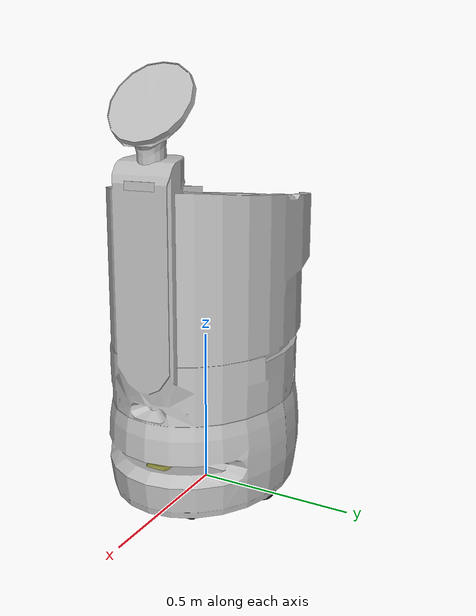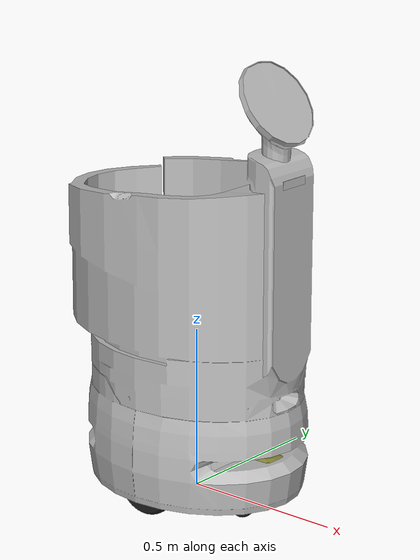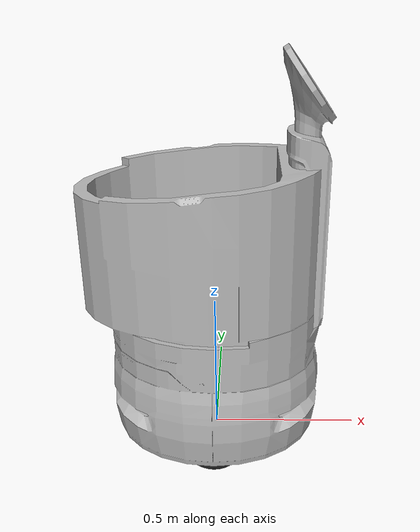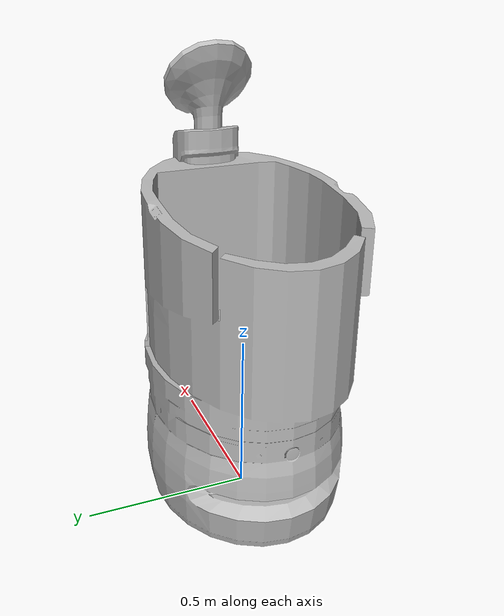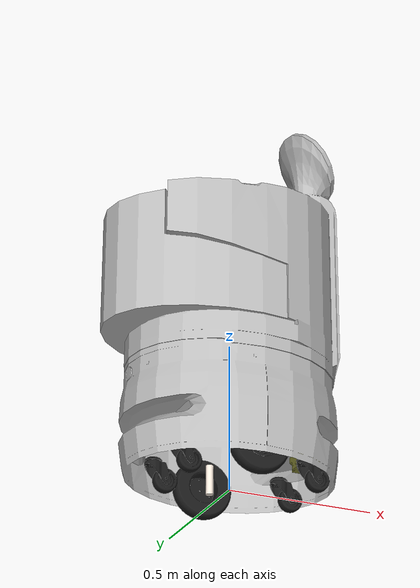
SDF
<?xml version="1.0"?>
<sdf version='1.6'>
<model name='CLOi_porter' canonical_link="link_MainBody">
  <link name='link_MainBody'>
   <inertial>
      <mass>59</mass>
      <inertia>
        <ixx>0.7</ixx>
        <ixy>0</ixy>
        <ixz>0</ixz>
        <iyy>0.7</iyy>
        <iyz>0</iyz>
        <izz>2</izz>
      </inertia>
      <pose>0 0 0.25 0 -0 0</pose>
    </inertial>

    <gravity>1</gravity>
    <self_collide>0</self_collide>
    <kinematic>0</kinematic>
    <enable_wind>0</enable_wind>

    <visual name='visual_main_base'>
      <geometry>
        <mesh>
          <uri>model://CLOi_porter/meshes/CLOi_porter.obj</uri>
          <scale>1 1 1</scale>
        </mesh>
      </geometry>
      <material>
        <emissive>0.005 0.005 0.005 1</emissive>
      </material>
      <transparency>0</transparency>
      <cast_shadows>0</cast_shadows>
    </visual>

    <collision name='collision_main_body'>
      <max_contacts>2</max_contacts>
      <geometry>
        <mesh>
          <uri>model://CLOi_porter/meshes/main_body_collision.stl</uri>
          <scale>1 1 1</scale>
        </mesh>
      </geometry>
      <surface>
        <friction>
          <ode>
            <mu>0.85</mu>
            <mu2>0.80</mu2>
            <fdir1>0 0 0</fdir1>
            <slip1>0.01</slip1>
            <slip2>0.01</slip2>
          </ode>
        </friction>
        <contact>
          <poissons_ratio>0.39</poissons_ratio>
          <elastic_modulus>0.39</elastic_modulus>
          <ode>
            <soft_cfm>0.05</soft_cfm>
            <soft_erp>0.40</soft_erp>
            <kp>1e+12</kp>
            <kd>0.01</kd>
            <min_depth>0.001</min_depth>
          </ode>
        </contact>
      </surface>
    </collision>
    <collision name='collision_cart'>
      <max_contacts>2</max_contacts>
      <geometry>
        <mesh>
          <uri>model://CLOi_porter/meshes/cart_collision.stl</uri>
          <scale>1 1 1</scale>
        </mesh>
      </geometry>
    </collision>
    <collision name='collision_neck'>
      <max_contacts>2</max_contacts>
      <geometry>
        <mesh>
          <uri>model://CLOi_porter/meshes/neck_collision.stl</uri>
          <scale>1 1 1</scale>
        </mesh>
      </geometry>
    </collision>
    <collision name='collision_head'>
      <max_contacts>2</max_contacts>
      <geometry>
        <mesh>
          <uri>model://CLOi_porter/meshes/head_collision.stl</uri>
          <scale>1 1 1</scale>
        </mesh>
      </geometry>
    </collision>

    <battery name="linear_battery">
      <voltage>42</voltage>
    </battery>
  </link>

  <include>
    <uri>model://robot_wheel_suspension</uri>
    <name>SuspensionLeft</name>
    <pose>0 0.158 0.09 0 0 0</pose>
  </include>
  <include>
    <uri>model://CLOi_porter_wheel</uri>
    <name>wheel_left</name>
    <pose>0.001 0.225 0.08 -1.5707962 0 0</pose>
  </include>
  <joint name="Joint_link_MainBody_SuspLeft" type="prismatic">
    <parent>link_MainBody</parent>
    <child>SuspensionLeft::link</child>
    <axis>
      <xyz>0 0 1</xyz>
      <limit>
        <upper>0.04</upper>
        <lower>0.0</lower>
        <effort>300</effort>
      </limit>
      <dynamics>
        <friction>0.1</friction>
        <damping>320</damping>
        <spring_stiffness>8200</spring_stiffness>
      </dynamics>
    </axis>
  </joint>
  <joint name='link_MainBody_wheel_left' type='revolute'>
    <parent>SuspensionLeft::link</parent>
    <child>wheel_left::link</child>
    <axis>
      <xyz>0 0 1</xyz>
      <limit>
        <effort>50</effort>
      </limit>
      <dynamics>
        <friction>0.001</friction>
        <damping>12</damping>
      </dynamics>
    </axis>
  </joint>

  <include>
    <uri>model://robot_wheel_suspension</uri>
    <name>SuspensionRight</name>
    <pose>0 -0.158 0.09 0 0 0</pose>
  </include>
  <include>
    <uri>model://CLOi_porter_wheel</uri>
    <name>wheel_right</name>
    <pose>0.001 -0.225 0.08 1.5707962 0 0</pose>
  </include>
  <joint name="Joint_link_MainBody_SuspRight" type="prismatic">
    <parent>link_MainBody</parent>
    <child>SuspensionRight::link</child>
    <axis>
      <xyz>0 0 1</xyz>
      <limit>
        <upper>0.04</upper>
        <lower>0.0</lower>
        <effort>300</effort>
      </limit>
      <dynamics>
        <friction>0.1</friction>
        <damping>320</damping>
        <spring_stiffness>8200</spring_stiffness>
      </dynamics>
    </axis>
  </joint>
  <joint name='link_MainBody_wheel_right' type='revolute'>
    <parent>SuspensionRight::link</parent>
    <child>wheel_right::link</child>
    <axis>
      <xyz>0 0 -1</xyz>
      <limit>
        <effort>50</effort>
      </limit>
      <dynamics>
        <friction>0.001</friction>
        <damping>12</damping>
      </dynamics>
    </axis>
  </joint>

  <include>
    <uri>model://CLOi_porter_caster</uri>
    <name>FL_caster</name>
    <pose>0.22 0.1 0.066 0 0 0</pose>
  </include>
  <joint name='link_MainBody_Caster_FL' type='revolute'>
    <parent>link_MainBody</parent>
    <child>FL_caster::link</child>
    <axis>
      <xyz>0 0 1</xyz>
      <dynamics>
        <friction>0.3</friction>
      </dynamics>
    </axis>
  </joint>

  <include>
    <uri>model://CLOi_porter_caster</uri>
    <name>FR_caster</name>
    <pose>0.22 -0.1 0.066 0 0 0</pose>
  </include>
  <joint name='link_MainBody_Caster_FR' type='revolute'>
    <parent>link_MainBody</parent>
    <child>FR_caster::link</child>
    <axis>
      <xyz>0 0 1</xyz>
      <dynamics>
        <friction>0.3</friction>
      </dynamics>
    </axis>
  </joint>

  <include>
    <uri>model://CLOi_porter_caster</uri>
    <name>RL_caster</name>
    <pose>-0.220 0.1 0.066 0 0 0</pose>
  </include>
  <joint name='link_MainBody_Caster_RL' type='revolute'>
    <parent>link_MainBody</parent>
    <child>RL_caster::link</child>
    <axis>
      <xyz>0 0 1</xyz>
      <dynamics>
        <friction>0.3</friction>
      </dynamics>
    </axis>
  </joint>

  <include>
    <uri>model://CLOi_porter_caster</uri>
    <name>RR_caster</name>
    <pose>-0.220 -0.1 0.066 0 0 0</pose>
  </include>
  <joint name='link_MainBody_Caster_RR' type='revolute'>
    <parent>link_MainBody</parent>
    <child>RR_caster::link</child>
    <axis>
      <xyz>0 0 1</xyz>
      <dynamics>
        <friction>0.3</friction>
      </dynamics>
    </axis>
  </joint>

  <include>
    <uri>model://robot_camera</uri>
    <name>camera</name>
    <pose>0.344 0 1.0141 0 0 0</pose>
  </include>
  <joint name='link_MainBody_JOINT_camera_front' type='fixed'>
    <parent>link_MainBody</parent>
    <child>camera::link</child>
  </joint>

  <include>
    <uri>model://robot_depthcam</uri>
    <name>depthcamera</name>
    <pose>0.344 0 1.0141 0 0 0</pose>
  </include>
  <joint name='link_MainBody_JOINT_depthcamera_front' type='fixed'>
    <parent>link_MainBody</parent>
    <child>depthcamera::link</child>
  </joint>

  <include>
    <uri>model://robot_IMU</uri>
    <name>imu</name>
    <pose>0 0 0.19 0 0 0</pose>
  </include>
  <joint name='link_MainBody_JOINT_imu' type='fixed'>
    <parent>link_MainBody</parent>
    <child>imu::link_imu</child>
  </joint>

  <include>
    <uri>model://hokuyo_UAM05LPT301_gpu</uri>
    <name>lidar</name>
    <pose>0.270000 0 0.1125 0 0 0</pose>
  </include>
  <joint name='link_MainBody_JOINT_lidar' type='fixed'>
    <parent>link_MainBody</parent>
    <child>lidar::link</child>
  </joint>

  <include>
    <uri>model://robot_GPS</uri>
    <name>gps</name>
    <pose>0 0 0.21 0 0 0</pose>
  </include>
  <joint name='Joint_GPS' type='fixed'>
    <parent>link_MainBody</parent>
    <child>gps::link</child>
  </joint>

  <plugin name='MicomRobotControl' filename='libMicomPlugin.so'>
    <imu>imu</imu>
    <uss>
    </uss>
    <ir>
    </ir>
    <magnet>
    </magnet>
    <bumper>
    </bumper>
    <wheel>
      <PID>
        <kp>1.1</kp>
        <ki>0.01</ki>
        <kd>0</kd>
      </PID>
      <separation>0.475</separation>
      <radius>0.1</radius>
      <location type="left">wheel_left</location>
      <location type="right">wheel_right</location>
    </wheel>
    <update_rate>50</update_rate>
    <ros2>
      <static_transforms>
        <link parent_frame_id="base_link">link_imu</link>
        <link parent_frame_id="base_link">SuspensionLeft::link</link>
        <link parent_frame_id="base_link">SuspensionRight::link</link>
      </static_transforms>
      <transforms>
        <link parent_frame_id="SuspensionLeft::link">wheel_left::link</link>
        <link parent_frame_id="SuspensionRight::link">wheel_right::link</link>
      </transforms>
    </ros2>
  </plugin>
</model>
</sdf>

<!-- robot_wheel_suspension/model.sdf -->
<sdf version='1.6'>
<model name='RobotWheelSuspension'>
  <link name="link">
    <inertial>
      <mass>2.0</mass>
      <inertia>
        <ixx>0.00172717</ixx>
        <ixy>0</ixy>
        <ixz>0</ixz>
        <iyy>0.00172717</iyy>
        <iyz>0</iyz>
        <izz>0.012100</izz>
      </inertia>
    </inertial>

    <gravity>1</gravity>

    <collision name="collision">
      <geometry>
        <cylinder>
          <radius>0.013</radius>
          <length>0.10</length>
        </cylinder>
      </geometry>
    </collision>
    <visual name="visual">
      <geometry>
        <cylinder>
          <radius>0.013</radius>
          <length>0.10</length>
        </cylinder>
      </geometry>
      <material>
        <ambient>0.09 0.09 0.09 1</ambient>
        <diffuse>0.95 0.9 0.85 1</diffuse>
        <specular>0.95 0.9 0.85 1</specular>
        <emissive>0.3 0.3 0.3 1</emissive>
      </material>
    </visual>
  </link>
</model>
</sdf>

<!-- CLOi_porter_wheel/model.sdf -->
<sdf version='1.6'>
<model name='CLOIPorterWheel'>
  <link name='link'>
    <inertial>
      <mass>1.5</mass>
      <inertia>
        <ixx>0.00216667</ixx>
        <ixy>0</ixy>
        <ixz>0</ixz>
        <iyy>0.00216667</iyy>
        <iyz>0</iyz>
        <izz>0.00400000</izz>
      </inertia>
    </inertial>

    <gravity>1</gravity>
    <self_collide>0</self_collide>
    <kinematic>0</kinematic>
    <enable_wind>0</enable_wind>

    <visual name='visual'>
      <geometry>
        <mesh>
          <uri>model://CLOi_porter_wheel/meshes/porter_wheel.stl</uri>
        </mesh>
      </geometry>
      <material>
        <lighting>1</lighting>
        <ambient>0.5 0.5 0.5 1</ambient>
        <diffuse>0.1 0.1 0.1 1</diffuse>
        <specular>0.8 0.8 0.8 1</specular>
        <emissive>0.02 0.02 0.02 1</emissive>
      </material>
      <cast_shadows>0</cast_shadows>
      <transparency>0</transparency>
    </visual>

    <collision name='collision_wheel'>
      <laser_retro>0</laser_retro>
      <max_contacts>2</max_contacts>
      <geometry>
        <cylinder>
          <radius>0.1</radius>
          <length>0.05</length>
        </cylinder>
      </geometry>
      <surface>
        <friction>
          <ode>
            <mu>0.99</mu>
            <fdir1>0 0 1</fdir1>
          </ode>
        </friction>
        <bounce>
          <restitution_coefficient>0.8</restitution_coefficient>
        </bounce>
        <contact>
          <poissons_ratio>0.49</poissons_ratio>
          <elastic_modulus>0.46</elastic_modulus>
          <ode>
            <max_vel>0.01</max_vel>
            <min_depth>0.0001</min_depth>
            <kp>3e6</kp>
            <kd>1.00000</kd>
            <soft_cfm>0.000010</soft_cfm>
            <soft_erp>0.250000</soft_erp>
          </ode>
        </contact>
      </surface>
    </collision>
  </link>
</model>
</sdf>

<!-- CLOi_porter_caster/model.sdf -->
<sdf version='1.6'>
<model name='CLOIPorterCaster'>
  <link name='link'>
    <inertial>
      <mass>0.45</mass>
      <inertia>
        <ixx>0.00000833</ixx>
        <ixy>0</ixy>
        <ixz>0</ixz>
        <iyy>0.00000833</iyy>
        <iyz>0</iyz>
        <izz>0.00000833</izz>
      </inertia>
      <pose>0.0 0.0 0.03 -0 0.0 0.0</pose>
    </inertial>

    <gravity>1</gravity>
    <self_collide>0</self_collide>
    <kinematic>0</kinematic>
    <enable_wind>0</enable_wind>

    <visual name='visual'>
      <geometry>
        <mesh>
          <uri>model://CLOi_porter_caster/meshes/caster_hinge.stl</uri>
        </mesh>
      </geometry>
      <material>
        <lighting>1</lighting>
        <ambient>1.0 1.0 1.0 1</ambient>
        <diffuse>0.1 0.1 0.1 1</diffuse>
        <specular>0.2 0.2 0.2 1</specular>
        <emissive>0.01 0.01 0.01 1</emissive>
      </material>
      <cast_shadows>0</cast_shadows>
      <transparency>0</transparency>
    </visual>

    <collision name='collision_caster_wheel'>
      <max_contacts>0</max_contacts>
      <geometry>
        <mesh>
          <uri>model://CLOi_porter_caster/meshes/caster_hinge_collision.stl</uri>
        </mesh>
      </geometry>
      <surface>
        <friction>
          <ode>
            <mu>0.0</mu>
            <mu2>0.0</mu2>
            <fdir1>0 0 1</fdir1>
            <slip1>0.1</slip1>
            <slip2>0.1</slip2>
          </ode>
        </friction>
      </surface>
    </collision>
  </link>

  <link name="link_caster_wheel">
    <pose>0.04 0 -0.026 1.5708 0 0</pose>
    <inertial>
      <mass>0.45</mass>
      <inertia>
        <ixx>0.00032067</ixx>
        <ixy>0</ixy>
        <ixz>0</ixz>
        <iyy>0.00032067</iyy>
        <iyz>0</iyz>
        <izz>0.00036100</izz>
      </inertia>
    </inertial>

    <gravity>1</gravity>
    <visual name='visual'>
      <geometry>
        <mesh>
          <uri>model://CLOi_porter_caster/meshes/caster_wheel.stl</uri>
        </mesh>
      </geometry>
      <material>
        <lighting>1</lighting>
        <ambient>0.95 0.9 0.92 1</ambient>
        <diffuse>0.1 0.1 0.1 1</diffuse>
        <specular>0.2 0.2 0.2 1</specular>
        <emissive>0.01 0.01 0.01 1</emissive>
      </material>
      <cast_shadows>0</cast_shadows>
      <transparency>0</transparency>
    </visual>

    <collision name='collision_caster_wheel'>
      <max_contacts>2</max_contacts>
      <geometry>
        <cylinder>
          <radius>0.04</radius>
          <length>0.03</length>
        </cylinder>
      </geometry>
      <surface>
        <friction>
          <ode>
            <mu>0.05</mu>
            <fdir1>0 0 1</fdir1>
            <slip1>0.1</slip1>
            <slip2>0.1</slip2>
          </ode>
        </friction>
        <contact>
          <poissons_ratio>0.40</poissons_ratio>
          <elastic_modulus>0.40</elastic_modulus>
        </contact>
        <bounce>
          <restitution_coefficient>1</restitution_coefficient>
          <threshold>100000</threshold>
        </bounce>
      </surface>
    </collision>
  </link>
  <joint name='link_CLOi_porter_caster_wheel_joint' type='revolute'>
    <parent>link</parent>
    <child>link_caster_wheel</child>
    <axis>
      <xyz>0 0 1</xyz>
      <dynamics>
        <friction>0.005</friction>
      </dynamics>
    </axis>
  </joint>
</model>
</sdf>

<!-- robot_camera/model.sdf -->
<sdf version='1.6'>
<model name='camera'>
  <static>0</static>
  <allow_auto_disable>1</allow_auto_disable>

  <link name='link'>
    <self_collide>0</self_collide>
    <enable_wind>0</enable_wind>
    <kinematic>0</kinematic>

    <inertial>
      <mass>0.072</mass>
      <inertia>
        <ixx>0.000007</ixx>
        <ixy>0</ixy>
        <ixz>0</ixz>
        <iyy>0.000007</iyy>
        <iyz>0</iyz>
        <izz>0.000007</izz>
      </inertia>
    </inertial>

    <collision name='collision_camera'>
      <geometry>
        <box>
          <size>0.030000 0.100000 0.025000</size>
        </box>
      </geometry>
      <max_contacts>1</max_contacts>
    </collision>

    <visual name='visual_camera'>
      <geometry>
        <box>
          <size>0.030000 0.100000 0.025000</size>
        </box>
      </geometry>
    </visual>

    <sensor name='camera' type='camera'>
      <camera>
        <save enabled="False">
          <path>/home/yg/Pictures/cam</path>
        </save>
        <horizontal_fov>2.1</horizontal_fov>
        <image>
          <width>640</width>
          <height>480</height>
          <format>R8G8B8</format>
        </image>
        <clip>
          <near>0.054</near>
          <far>50</far>
        </clip>
        <noise>
          <type>gaussian</type>
          <mean>0.0</mean>
          <stddev>0.00</stddev>
        </noise>
        <distortion>
          <k1>0.10369</k1>
          <k2>0.10328</k2>
        </distortion>
      </camera>

      <always_on>1</always_on>
      <update_rate>10</update_rate>
      <visualize>0</visualize>
      <plugin name='CameraPlugin' filename='libCameraPlugin.so'>
        <ros2>
          <topic_name>color</topic_name>
          <frame_id>camera_link</frame_id>
        </ros2>
      </plugin>
    </sensor>
  </link>
</model>
</sdf>

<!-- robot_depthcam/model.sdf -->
<sdf version='1.6'>
<model name='depth_camera'>
  <static>0</static>
  <allow_auto_disable>1</allow_auto_disable>

  <link name='link'>
    <self_collide>0</self_collide>
    <enable_wind>0</enable_wind>
    <kinematic>0</kinematic>

    <inertial>
      <mass>0.8</mass>
      <inertia>
        <ixx>0.00133333</ixx>
        <ixy>0</ixy>
        <ixz>0</ixz>
        <iyy>0.00133333</iyy>
        <iyz>0</iyz>
        <izz>0.00133333</izz>
      </inertia>
    </inertial>

    <collision name='collision_camera'>
      <geometry>
        <box>
          <size>0.030000 0.100000 0.025000</size>
        </box>
      </geometry>
      <max_contacts>1</max_contacts>
    </collision>

    <visual name='visual_camera'>
      <geometry>
        <box>
          <size>0.030000 0.100000 0.025000</size>
        </box>
      </geometry>
    </visual>

    <sensor name='depth_camera' type='depth'>
      <camera>
        <save enabled="False">
          <path>/home/yg/Pictures/cam</path>
        </save>
        <horizontal_fov>0.98</horizontal_fov>
        <image>
          <width>320</width>
          <height>240</height>
        </image>
        <clip>
          <near>0.02</near>
          <far>2.1</far>
        </clip>
      </camera>

      <always_on>1</always_on>
      <update_rate>10</update_rate>
      <visualize>1</visualize>

      <plugin name='DepthCameraPlugin' filename='libCameraPlugin.so'>
        <ros2>
          <topic_name>depth</topic_name>
          <frame_id>depthcam_link</frame_id>
        </ros2>
      </plugin>
    </sensor>
  </link>
</model>
</sdf>

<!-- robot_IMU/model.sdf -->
<sdf version='1.6'>
<model name='IMU'>
  <allow_auto_disable>1</allow_auto_disable>
  <link name='link_imu'>
    <inertial>
      <mass>0.002</mass>
      <inertia>
        <ixx>0.00000003</ixx>
        <ixy>0</ixy>
        <ixz>0</ixz>
        <iyy>0.00000003</iyy>
        <iyz>0</iyz>
        <izz>0.00000003</izz>
      </inertia>
    </inertial>

    <gravity>0</gravity>
    <self_collide>0</self_collide>
    <kinematic>0</kinematic>
    <enable_wind>0</enable_wind>

    <visual name='visual'>
      <geometry>
        <box>
          <size>0.01 0.01 0.01</size>
        </box>
      </geometry>
      <material>
        <lighting>1</lighting>
        <ambient>0.3 0.3 0.3 1</ambient>
        <diffuse>0.7 0.7 0.7 1</diffuse>
        <specular>0.01 0.01 0.01 1</specular>
        <emissive>0 0 0 1</emissive>
      </material>
      <transparency>0</transparency>
      <cast_shadows>0</cast_shadows>
    </visual>

    <sensor name='imu_sensor' type='imu'>
      <imu>
        <angular_velocity>
          <x>
            <noise type='none'/>
          </x>
          <y>
            <noise type='none'/>
          </y>
          <z>
            <noise type='none'/>
          </z>
        </angular_velocity>
        <linear_acceleration>
          <x>
            <noise type='none'/>
          </x>
          <y>
            <noise type='none'/>
          </y>
          <z>
            <noise type='none'/>
          </z>
        </linear_acceleration>
      </imu>
      <always_on>1</always_on>
      <update_rate>30</update_rate>
    </sensor>
  </link>
</model>
</sdf>

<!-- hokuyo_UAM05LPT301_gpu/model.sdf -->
<sdf version='1.6'>
<model name="hokuyo_UAM05LPT301_gpu">
  <static>0</static>
  <link name="link">
    <inertial>
      <mass>0.8</mass>
      <inertia>
        <ixx>0.00043333</ixx>
        <ixy>0</ixy>
        <ixz>0</ixz>
        <iyy>0.00043333</iyy>
        <iyz>0</iyz>
        <izz>0.00065333</izz>
      </inertia>
    </inertial>
    <self_collide>0</self_collide>
    <enable_wind>0</enable_wind>
    <kinematic>0</kinematic>

    <visual name="visual">
      <geometry>
        <mesh>
          <uri>model://hokuyo_UAM05LPT301_gpu/meshes/uam05lp.stl</uri>
          <scale>1 1 1</scale>
        </mesh>
      </geometry>
      <material>
        <lighting>1</lighting>
        <ambient>0.05 0.05 0.05 1</ambient>
        <diffuse>0.5 0.5 0.2 1</diffuse>
        <specular>0.5 0.5 0.1 1</specular>
        <emissive>0.02 0.02 0.02 1</emissive>
      </material>
    </visual>

    <collision name="collision">
      <laser_retro>0</laser_retro>
      <max_contacts>1</max_contacts>
      <pose>0 0 0.02 0 -0 0</pose>
      <geometry>
        <box>
          <size>0.07 0.07 0.04</size>
        </box>
      </geometry>
      <surface>
        <friction>
          <ode>
            <mu>0.9</mu>
            <mu2>0.8</mu2>
            <fdir1>0 0 0</fdir1>
            <slip1>0.0</slip1>
            <slip2>0.0</slip2>
          </ode>
        </friction>
        <contact>
          <poissons_ratio>0.33</poissons_ratio>
          <elastic_modulus>0.33</elastic_modulus>
          <ode>
            <soft_cfm>0.0</soft_cfm>
            <soft_erp>0.2</soft_erp>
            <kp>1e+12</kp>
            <kd>0.00</kd>
            <max_vel>0.01</max_vel>
            <min_depth>0.001</min_depth>
          </ode>
        </contact>
      </surface>
    </collision>

    <sensor name="hokuyo_laser" type="gpu_lidar">
      <pose>0 0 0.070 0 -0 0</pose>
      <lidar>
        <scan>
          <horizontal>
            <samples>1081</samples>
            <resolution>1</resolution>
            <min_angle>-2.35619</min_angle>
            <max_angle>+2.35619</max_angle>
          </horizontal>
        </scan>
        <range>
          <min>0.03</min>
          <max>20</max>
          <resolution>0.004363</resolution><!-- 0.25 deg -->
        </range>
      </lidar>
      <always_on>1</always_on>
      <update_rate>33.33333</update_rate>
      <visualize>false</visualize>

      <plugin name="LaserPlugin" filename="libLaserPlugin.so" >
        <ros2>
          <topic_name>scan</topic_name>
          <frame_id>base_scan</frame_id>
        </ros2>
        <output_type>LaserScan</output_type>
        <intensity>false</intensity>
        <filter>
          <angle>
            <horizontal>
              <lower>-1.845000</lower>
              <upper>1.845000</upper>
            </horizontal>
          </angle>
        </filter>
      </plugin>
    </sensor>
  </link>
</model>
</sdf>

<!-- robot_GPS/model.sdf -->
<sdf version='1.6'>
<model name='GPS'>
  <allow_auto_disable>1</allow_auto_disable>
  <link name='link'>
    <inertial>
      <mass>0.002</mass>
      <inertia>
        <ixx>0.00000003</ixx>
        <ixy>0</ixy>
        <ixz>0</ixz>
        <iyy>0.00000003</iyy>
        <iyz>0</iyz>
        <izz>0.00000003</izz>
      </inertia>
    </inertial>

    <gravity>0</gravity>
    <self_collide>0</self_collide>
    <kinematic>0</kinematic>
    <enable_wind>0</enable_wind>

    <visual name='visual'>
      <geometry>
        <box>
          <size>0.01 0.01 0.01</size>
        </box>
      </geometry>
      <material>
        <lighting>1</lighting>
        <ambient>0.3 0.3 0.3 1</ambient>
        <diffuse>0.7 0.7 0.7 1</diffuse>
        <specular>0.01 0.01 0.01 1</specular>
        <emissive>0 0 0 1</emissive>
      </material>
      <transparency>0</transparency>
      <cast_shadows>0</cast_shadows>
    </visual>

    <sensor name='gps_sensor' type='gps'>
      <always_on>1</always_on>
      <update_rate>10.000000</update_rate>
      <gps>
        <position_sensing>
          <horizontal>
          </horizontal>
          <vertical>
          </vertical>
        </position_sensing>
        <velocity_sensing>
          <horizontal>
          </horizontal>
          <vertical>
          </vertical>
        </velocity_sensing>
      </gps>
      <plugin name='GpsPlugin' filename='libGpsPlugin.so'>
        <ros2>
          <topic_name>navsatfix</topic_name>
          <frame_id>gps_link</frame_id>
        </ros2>
      </plugin>
    </sensor>
  </link>
</model>
</sdf>
